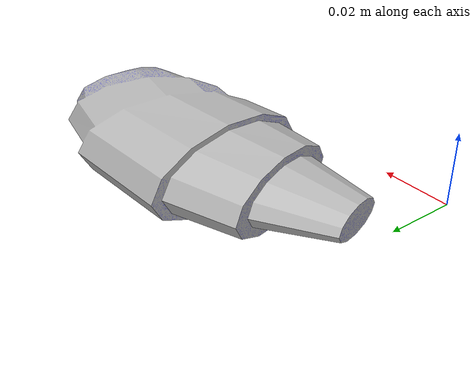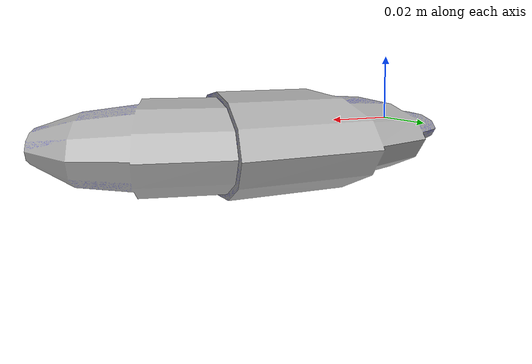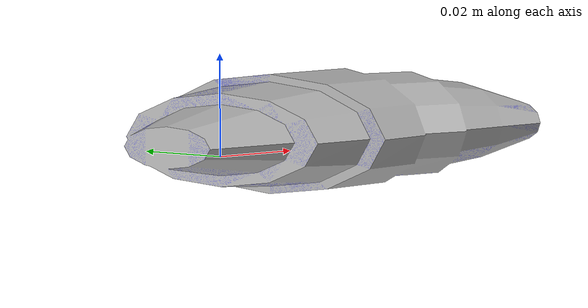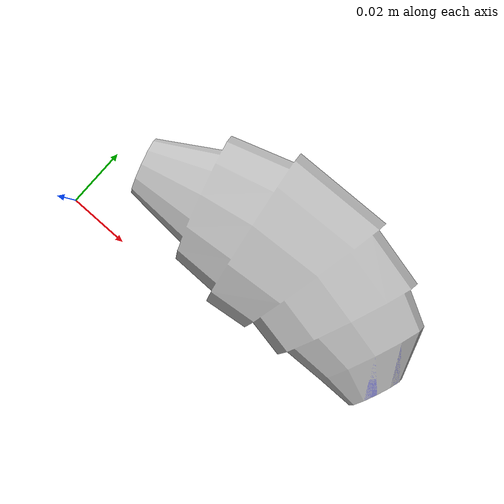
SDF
<?xml version="1.0" ?>
<sdf version="1.5">
  <model name="croissant">
    <static>1</static>
    <link name="link">
      <collision name="collision">
        <geometry>
          <mesh>
            <uri>model://croissant/meshes/model.dae</uri>
          </mesh>
        </geometry>
      </collision>
      <visual name="visual">
        <geometry>
          <mesh>
            <uri>model://croissant/meshes/model.dae</uri>
          </mesh>
        </geometry>
        <material>
          <script>
            <uri>model://croissant/meshes/model</uri>
          </script>
        </material>
      </visual>
    </link>
  </model>
</sdf>
